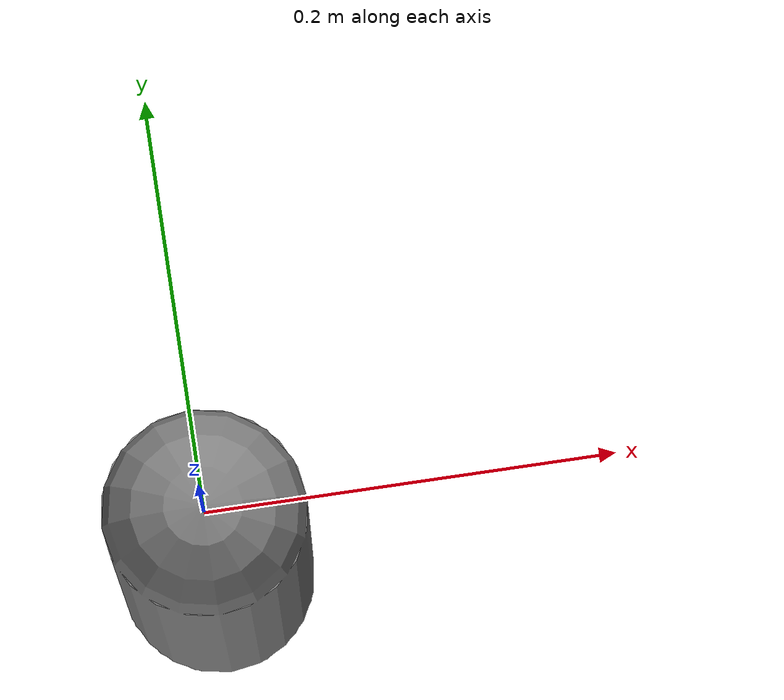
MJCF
<mujoco model="ref_pendulum">
            <option gravity="0 0 -9.81" timestep="0.001" solver="Newton"/>
            <worldbody>
                <body name="pendulum" pos="0 0 0">
                    <joint name="j" type="hinge" axis="0 1 0"/>
                    <geom type="capsule" size="0.05" fromto="0 0 0 0 0 -0.5" mass="1.0"/>
                </body>
            </worldbody>
        </mujoco>
